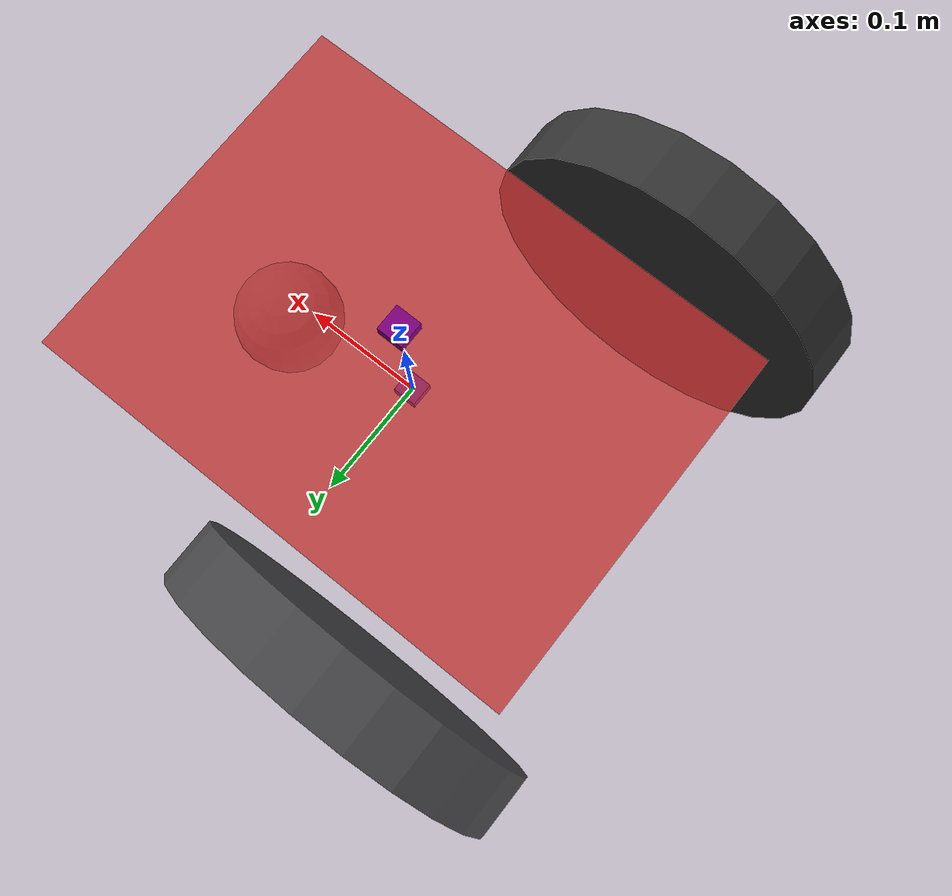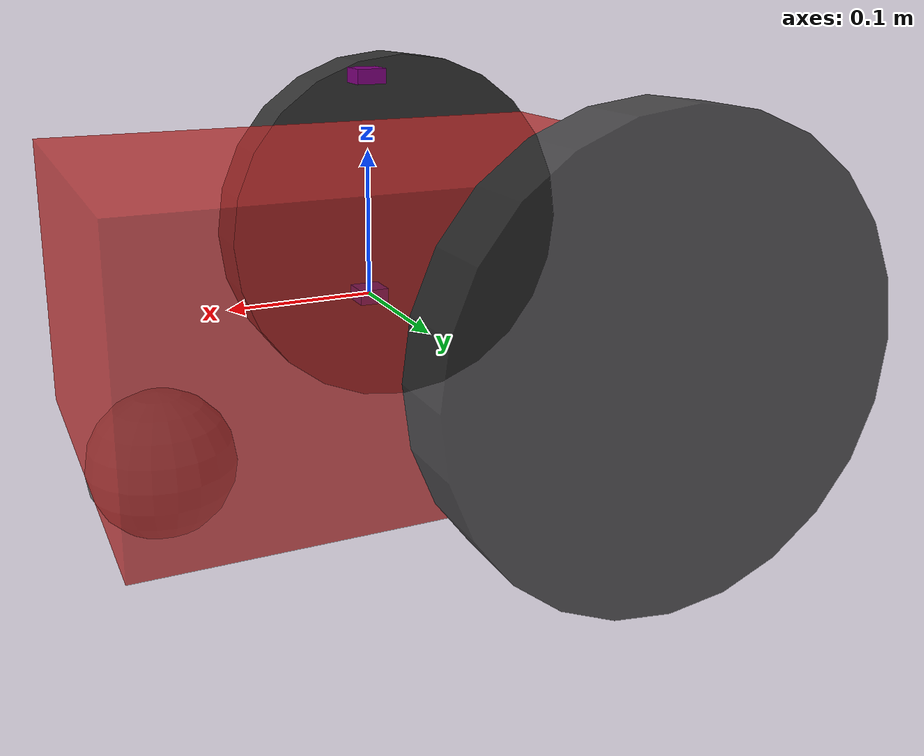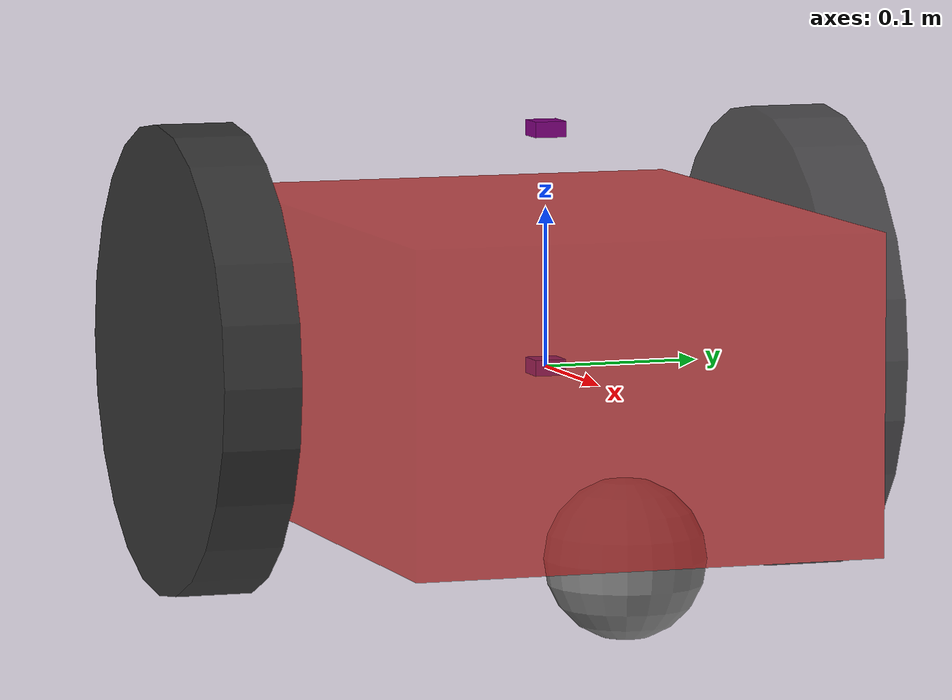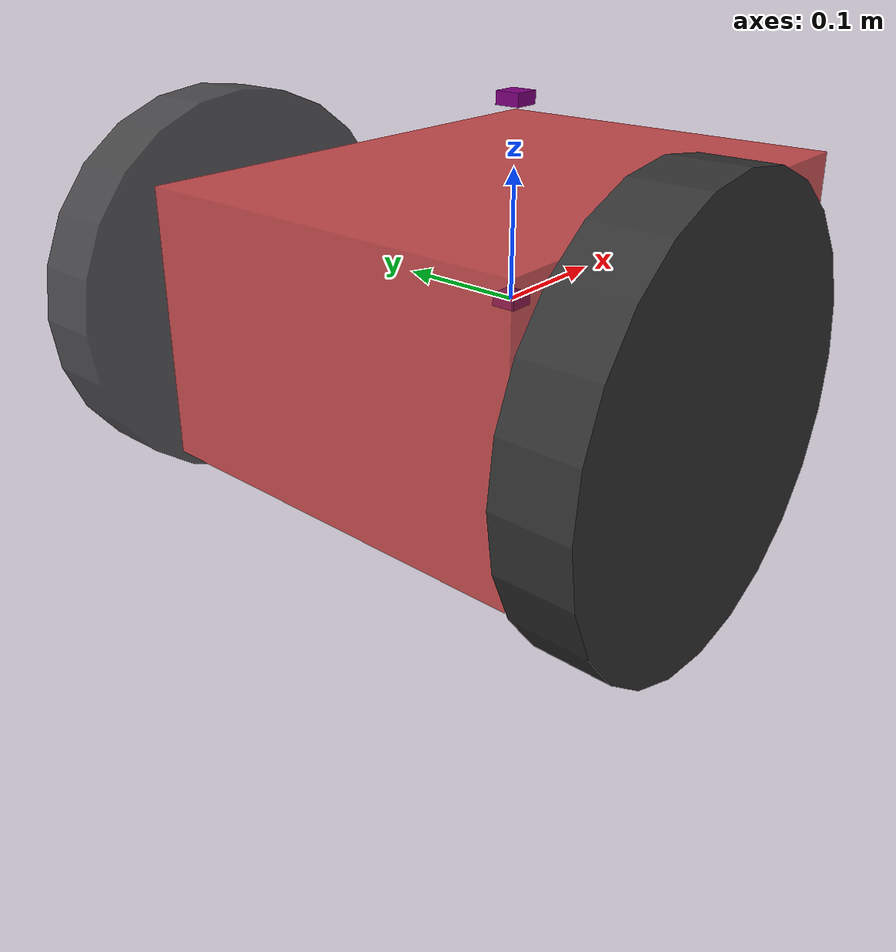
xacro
<?xml version="1.0"?>
<robot xmlns:xacro="http://ros.org/wiki/xacro" name="diff_bot_sensors">

    <!-- Parameters -->
    <xacro:property name="wheel_radius" value="0.15"/>
    <xacro:property name="wheel_width" value="0.05"/>
    <xacro:property name="wheel_separation" value="0.4"/>
    <xacro:property name="base_size_x" value="0.4"/>
    <xacro:property name="base_size_y" value="0.3"/>
    <xacro:property name="base_size_z" value="0.2"/>
    <xacro:property name="caster_radius" value="0.05"/>

    <!-- Dummy link -->

    <!-- Base Link -->
    <link name="base_link">
        <inertial>
            <mass value="5.0"/>
            <inertia ixx="0.1" ixy="0" ixz="0" iyy="0.1" iyz="0" izz="0.1"/>
        </inertial>
        <visual name="base_visual">
            <geometry>
                <box size="${base_size_x} ${base_size_y} ${base_size_z}"/>
            </geometry>
            <material name="">
                <color rgba="0.8 0.2 0.2 0.8"/>
            </material>
        </visual>
        <collision name="base_collision">
            <geometry>
                <box size="${base_size_x} ${base_size_y} ${base_size_z}"/>
            </geometry>
        </collision>
    </link>

    <!-- Left Wheel -->
    <link name="left_wheel">
        <pose>-0.1 0.2 0 1.5708 0 0</pose>
        <inertial>
            <mass value="0.5"/>
            <inertia ixx="0.02" ixy="0" ixz="0" iyy="0.02" iyz="0" izz="0.02"/>
        </inertial>
        <visual name="left_wheel_visual">
            <geometry>
                <cylinder radius="${wheel_radius}" length="${wheel_width}"/>
            </geometry>
            <material name="">
                <color rgba="0.2 0.2 0.2 0.8"/>
            </material>
        </visual>
        <collision name="left_wheel_collision">
            <geometry>
                <cylinder radius="${wheel_radius}" length="${wheel_width}"/>
            </geometry>
        </collision>
    </link>

    <!-- Right Wheel -->
    <link name="right_wheel">
        <pose>-0.1 -0.2 0 1.5708 0 0</pose>
        <inertial>
            <mass value="0.5"/>
            <inertia ixx="0.02" ixy="0" ixz="0" iyy="0.02" iyz="0" izz="0.02"/>
        </inertial>
        <visual name="right_wheel_visual">
            <geometry>
                <cylinder radius="${wheel_radius}" length="${wheel_width}"/>
            </geometry>
            <material name="">
                <color rgba="0.2 0.2 0.2 1"/>
            </material>
        </visual>
        <collision name="right_wheel_collision">
            <geometry>
                <cylinder radius="${wheel_radius}" length="${wheel_width}"/>
            </geometry>
        </collision>
    </link>

    <!-- Caster Wheel -->
    <link name="caster_wheel">
        <pose>0.15 0 -0.1 0 0 0</pose>
        <inertial>
            <mass value="0.1"/>
            <inertia ixx="0.001" ixy="0" ixz="0" iyy="0.001" iyz="0" izz="0.001"/>
        </inertial>
        <visual name="caster_visual">
            <geometry>
                <sphere radius="${caster_radius}"/>
            </geometry>
            <material name="">
                <color rgba="0.5 0.5 0.5 1"/>
            </material>
        </visual>
        <collision name="caster_collision">
            <geometry>
                <sphere radius="${caster_radius}"/>
            </geometry>
        </collision>
    </link>

    <!-- Joints -->
    <joint name="left_wheel_joint" type="continuous">
        <parent link="base_link"/>
        <child link="left_wheel"/>
        <origin xyz="-0.1 0.2 0" rpy="1.5708 0 0"/>
        <axis xyz="0 0 1"/>
    </joint>

    <joint name="right_wheel_joint" type="continuous">
        <parent link="base_link"/>
        <child link="right_wheel"/>
        <origin xyz="-0.1 -0.2 0" rpy="1.5708 0 0"/>
        <axis xyz="0 0 1"/>
    </joint>

    <joint name="caster_wheel_joint" type="fixed">
        <parent link="base_link"/>
        <child link="caster_wheel"/>
        <origin xyz="0.15 0 -0.1" rpy="0 0 0"/>
    </joint>

    <!-- IMU Link -->
    <link name="imu_link">
        <inertial>
            <mass value="0.001"/>
            <inertia ixx="0.000001" ixy="0" ixz="0" iyy="0.000001" iyz="0" izz="0.000001"/>
        </inertial>
        <visual>
            <geometry>
                <box size="0.02 0.02 0.01"/>
            </geometry>
            <material name="">
                <color rgba="0.0 0.0 1.0 1.0"/>  <!-- Blue -->
            </material>
        </visual>
        <collision>
            <geometry>
                <box size="0.02 0.02 0.01"/>
            </geometry>
        </collision>
    </link>

    <joint name="imu_joint" type="fixed">
        <parent link="base_link"/>
        <child link="imu_link"/>
    </joint>

    <!-- Lidar Link -->
    <link name="lidar_link">
        <inertial>
            <mass value="0.001"/>
            <inertia ixx="0.000001" ixy="0" ixz="0" iyy="0.000001" iyz="0" izz="0.000001"/>
        </inertial>
        <visual>
            <geometry>
                <box size="0.02 0.02 0.01"/>
            </geometry>
            <material name="">
                <color rgba="0.5 0.0 0.5 1.0"/>  <!-- Purple -->
            </material>
        </visual>
        <collision>
            <geometry>
                <box size="0.02 0.02 0.01"/>
            </geometry>
        </collision>
    </link>

    <joint name="lidar_joint" type="fixed">
        <parent link="base_link"/>
        <child link="lidar_link"/>
        <origin xyz="0 0 0.15" rpy="0 0 0"/>
    </joint>

</robot>
